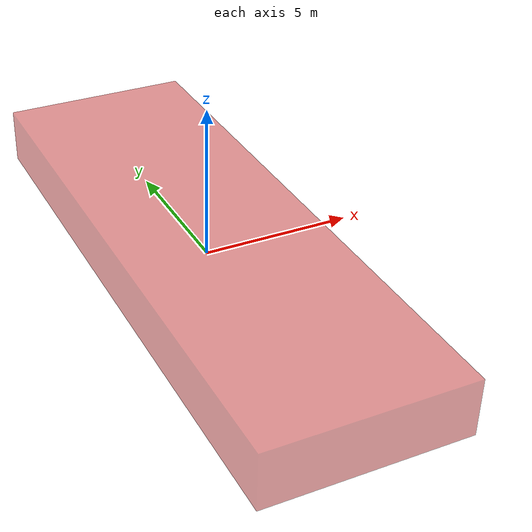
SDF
<?xml version='1.0'?>
<sdf version='1.6'>
  <model name='Box_15x30'>
    <link name='Wall'>
     <pose frame=''>0 0.0 0.1985 0 0 0</pose>
	<inertial>
	  <mass>5</mass>
	   <inertia>
	     <ixx>0.3089</ixx>
	     <iyy>0.1022</iyy>
	     <izz>0.2797</izz>
    	     <ixy>0</ixy>
	     <ixz>0</ixz>
	     <iyz>0</iyz>
	   </inertia>
	</inertial>
      <collision name='Wall_Collision'>
        <geometry>
          <box>
            <size>0.896 0.764 0.897</size>
          </box>
        </geometry>
      </collision>
      <visual name='Wall_Visual'>
        <geometry>
          <box>
            <size>6.5 19.8 1.897</size>
          </box>
        </geometry>
        <material>
          <script>
            <uri>file://media/materials/scripts/gazebo.material</uri>
            <name>Gazebo/RedTransparent</name>
          </script>
          <ambient>1 0.764706 0.305882 1</ambient>
        </material>
      </visual>
     </link>

    <static>1</static>
  </model>
</sdf>
